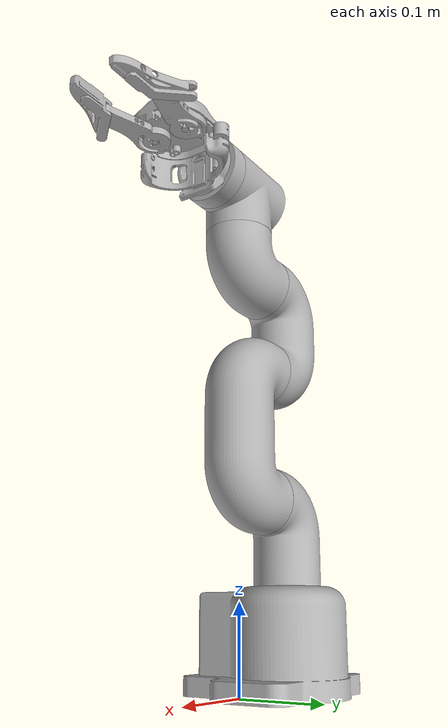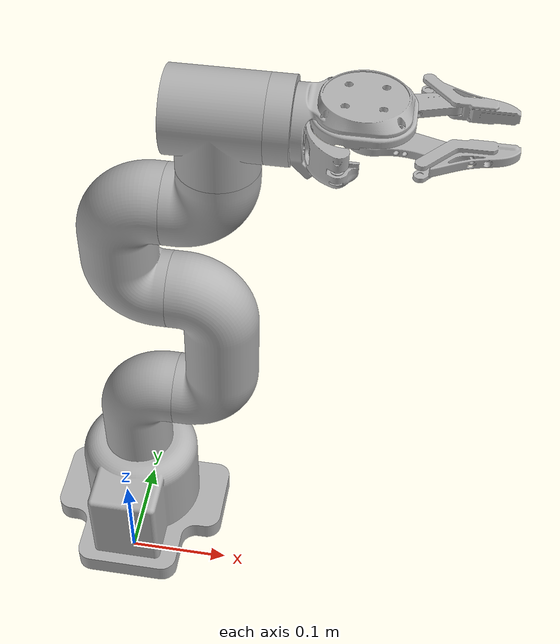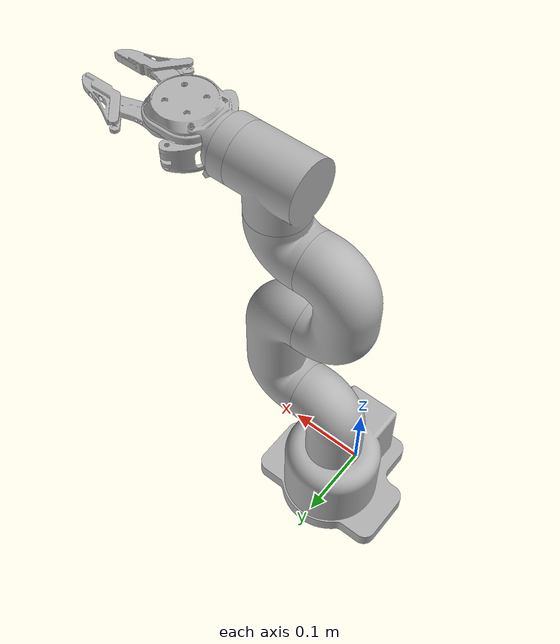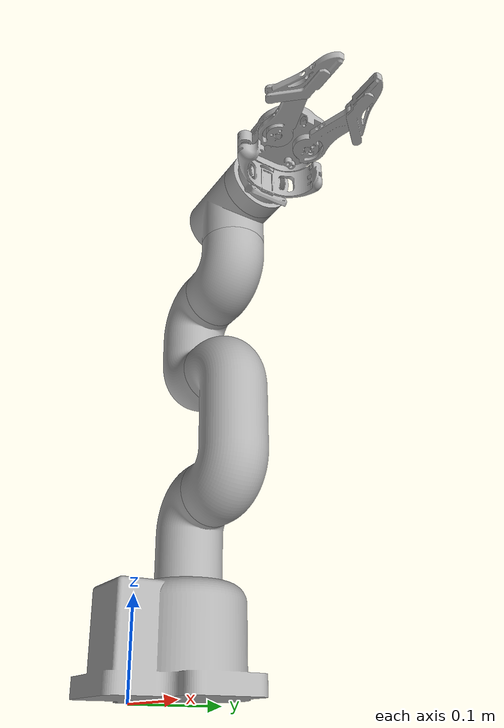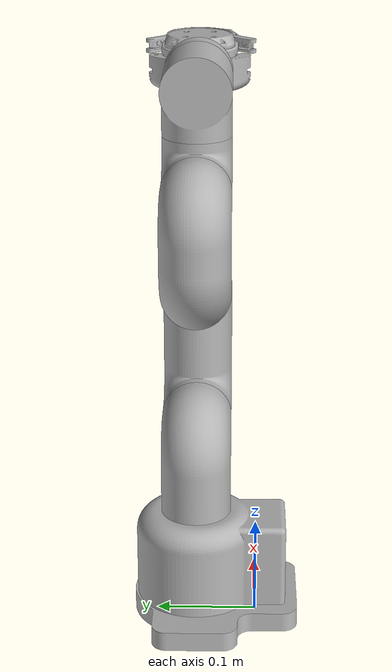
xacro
<?xml version="1.0"?>
<robot xmlns:xacro="http://www.ros.org/wiki/xacro" name="mycobot">
    <xacro:arg name="initial_positions_file" default="initial_positions.yaml" />

    <!-- Import mycobot urdf file -->
    <xacro:include filename="$(find mycobot_description)/urdf/mycobot.xacro" />

    <!-- Import control_xacro -->
    <xacro:include filename="mycobot.ros2_control.xacro" />

    <xacro:mycobot_ros2_control name="FakeSystem" initial_positions_file="$(arg initial_positions_file)"/>

</robot>

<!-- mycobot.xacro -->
<robot name="mycobot" xmlns:xacro="http://www.ros.org/wiki/xacro">

<xacro:include filename="$(find mycobot_description)/urdf/materials.xacro"/>
<link name="base_link">
  <visual>
    <origin xyz="0 0 0" rpy="0 0 0"/>
    <geometry>
      <mesh filename="file://$(find mycobot_description)/meshes/base_link.stl" scale="0.001 0.001 0.001"/>
    </geometry>
    <material name="silver"/>
  </visual>
  <collision>
    <origin xyz="0 0 0" rpy="0 0 0"/>
    <geometry>
      <mesh filename="file://$(find mycobot_description)/meshes/base_link.stl" scale="0.001 0.001 0.001"/>
    </geometry>
  </collision>
</link>

<link name="link1">
  <visual>
    <origin xyz="0.0 -0.060072 -0.114761" rpy="0 0 0"/>
    <geometry>
      <mesh filename="file://$(find mycobot_description)/meshes/link1.stl" scale="0.001 0.001 0.001"/>
    </geometry>
    <material name="silver"/>
  </visual>
  <collision>
    <origin xyz="0.0 -0.060072 -0.114761" rpy="0 0 0"/>
    <geometry>
      <mesh filename="file://$(find mycobot_description)/meshes/link1.stl" scale="0.001 0.001 0.001"/>
    </geometry>
  </collision>
</link>

<link name="link2">
  <visual>
    <origin xyz="-0.045 -0.060072 -0.199761" rpy="0 0 0"/>
    <geometry>
      <mesh filename="file://$(find mycobot_description)/meshes/link2.stl" scale="0.001 0.001 0.001"/>
    </geometry>
    <material name="silver"/>
  </visual>
  <collision>
    <origin xyz="-0.045 -0.060072 -0.199761" rpy="0 0 0"/>
    <geometry>
      <mesh filename="file://$(find mycobot_description)/meshes/link2.stl" scale="0.001 0.001 0.001"/>
    </geometry>
  </collision>
</link>

<link name="link3">
  <visual>
    <origin xyz="-0.045 -0.060072 -0.335761" rpy="0 0 0"/>
    <geometry>
      <mesh filename="file://$(find mycobot_description)/meshes/link3.stl" scale="0.001 0.001 0.001"/>
    </geometry>
    <material name="silver"/>
  </visual>
  <collision>
    <origin xyz="-0.045 -0.060072 -0.335761" rpy="0 0 0"/>
    <geometry>
      <mesh filename="file://$(find mycobot_description)/meshes/link3.stl" scale="0.001 0.001 0.001"/>
    </geometry>
  </collision>
</link>

<link name="link4">
  <visual>
    <origin xyz="-0.045 -0.060072 -0.434761" rpy="0 0 0"/>
    <geometry>
      <mesh filename="file://$(find mycobot_description)/meshes/link4.stl" scale="0.001 0.001 0.001"/>
    </geometry>
    <material name="silver"/>
  </visual>
  <collision>
    <origin xyz="-0.045 -0.060072 -0.434761" rpy="0 0 0"/>
    <geometry>
      <mesh filename="file://$(find mycobot_description)/meshes/link4.stl" scale="0.001 0.001 0.001"/>
    </geometry>
  </collision>
</link>

<link name="link5">
  <visual>
    <origin xyz="-0.09 -0.060072 -0.479761" rpy="0 0 0"/>
    <geometry>
      <mesh filename="file://$(find mycobot_description)/meshes/link5.stl" scale="0.001 0.001 0.001"/>
    </geometry>
    <material name="silver"/>
  </visual>
  <collision>
    <origin xyz="-0.09 -0.060072 -0.479761" rpy="0 0 0"/>
    <geometry>
      <mesh filename="file://$(find mycobot_description)/meshes/link5.stl" scale="0.001 0.001 0.001"/>
    </geometry>
  </collision>
</link>

<link name="link6">
  <visual>
    <origin xyz="-0.13 -0.060072 -0.529761" rpy="0 0 0"/>
    <geometry>
      <mesh filename="file://$(find mycobot_description)/meshes/link6.stl" scale="0.001 0.001 0.001"/>
    </geometry>
    <material name="silver"/>
  </visual>
  <collision>
    <origin xyz="-0.13 -0.060072 -0.529761" rpy="0 0 0"/>
    <geometry>
      <mesh filename="file://$(find mycobot_description)/meshes/link6.stl" scale="0.001 0.001 0.001"/>
    </geometry>
  </collision>
</link>

<link name="gripper_left1">
  <visual>
    <origin xyz="-0.261438 -0.008607 -0.536903" rpy="0 0 0"/>
    <geometry>
      <mesh filename="file://$(find mycobot_description)/meshes/gripper_left1.stl" scale="0.001 0.001 0.001"/>
    </geometry>
    <material name="silver"/>
  </visual>
  <collision>
    <origin xyz="-0.261438 -0.008607 -0.536903" rpy="0 0 0"/>
    <geometry>
      <mesh filename="file://$(find mycobot_description)/meshes/gripper_left1.stl" scale="0.001 0.001 0.001"/>
    </geometry>
  </collision>
</link>

<link name="gripper_right1">
  <visual>
    <origin xyz="-0.261438 -0.111297 -0.533501" rpy="0 0 0"/>
    <geometry>
      <mesh filename="file://$(find mycobot_description)/meshes/gripper_right1.stl" scale="0.001 0.001 0.001"/>
    </geometry>
    <material name="silver"/>
  </visual>
  <collision>
    <origin xyz="-0.261438 -0.111297 -0.533501" rpy="0 0 0"/>
    <geometry>
      <mesh filename="file://$(find mycobot_description)/meshes/gripper_right1.stl" scale="0.001 0.001 0.001"/>
    </geometry>
  </collision>
</link>

<link name="gripper_left3">
  <visual>
    <origin xyz="-0.21039 -0.041612 -0.533403" rpy="0 0 0"/>
    <geometry>
      <mesh filename="file://$(find mycobot_description)/meshes/gripper_left3.stl" scale="0.001 0.001 0.001"/>
    </geometry>
    <material name="silver"/>
  </visual>
  <collision>
    <origin xyz="-0.21039 -0.041612 -0.533403" rpy="0 0 0"/>
    <geometry>
      <mesh filename="file://$(find mycobot_description)/meshes/gripper_left3.stl" scale="0.001 0.001 0.001"/>
    </geometry>
  </collision>
</link>

<link name="gripper_right3">
  <visual>
    <origin xyz="-0.21039 -0.078292 -0.533403" rpy="0 0 0"/>
    <geometry>
      <mesh filename="file://$(find mycobot_description)/meshes/gripper_right3.stl" scale="0.001 0.001 0.001"/>
    </geometry>
    <material name="silver"/>
  </visual>
  <collision>
    <origin xyz="-0.21039 -0.078292 -0.533403" rpy="0 0 0"/>
    <geometry>
      <mesh filename="file://$(find mycobot_description)/meshes/gripper_right3.stl" scale="0.001 0.001 0.001"/>
    </geometry>
  </collision>
</link>

<link name="gripper_base">
  <visual>
    <origin xyz="-0.15 -0.060072 -0.529761" rpy="0 0 0"/>
    <geometry>
      <mesh filename="file://$(find mycobot_description)/meshes/gripper_base.stl" scale="0.001 0.001 0.001"/>
    </geometry>
    <material name="silver"/>
  </visual>
  <collision>
    <origin xyz="-0.15 -0.060072 -0.529761" rpy="0 0 0"/>
    <geometry>
      <mesh filename="file://$(find mycobot_description)/meshes/gripper_base.stl" scale="0.001 0.001 0.001"/>
    </geometry>
  </collision>
</link>

<!-- joint -->
<joint name="joint2_to_joint1" type="revolute">
  <origin xyz="0.0 0.060072 0.114761" rpy="0 0 0"/>
  <parent link="base_link"/>
  <child link="link1"/>
  <axis xyz="-0.0 0.0 1.0"/>
  <limit upper="2.87" lower="-2.87" effort="100" velocity="100"/>
</joint>

<joint name="joint3_to_joint2" type="revolute">
  <origin xyz="0.045 0.0 0.085" rpy="0 0 0"/>
  <parent link="link1"/>
  <child link="link2"/>
  <axis xyz="1.0 -0.0 0.0"/>
  <limit upper="2.87" lower="-2.87" effort="100" velocity="100"/>
</joint>

<joint name="joint4_to_joint3" type="revolute">
  <origin xyz="0.0 0.0 0.136" rpy="0 0 0"/>
  <parent link="link2"/>
  <child link="link3"/>
  <axis xyz="-1.0 0.0 -0.0"/>
  <limit upper="2.87" lower="-2.87" effort="100" velocity="100"/>
</joint>

<joint name="joint5_to_joint4" type="revolute">
  <origin xyz="0.0 0.0 0.099" rpy="0 0 0"/>
  <parent link="link3"/>
  <child link="link4"/>
  <axis xyz="1.0 0.0 0.0"/>
  <limit upper="2.87" lower="-2.87" effort="100" velocity="100"/>
</joint>

<joint name="joint6_to_joint5" type="revolute">
  <origin xyz="0.045 0.0 0.045" rpy="0 0 0"/>
  <parent link="link4"/>
  <child link="link5"/>
  <axis xyz="0.0 0.0 1.0"/>
  <limit upper="2.87" lower="-2.87" effort="100" velocity="100"/>
</joint>

<joint name="joint6output_to_joint6" type="revolute">
  <origin xyz="0.04 0.0 0.05" rpy="0 0 0"/>
  <parent link="link5"/>
  <child link="link6"/>
  <axis xyz="1.0 -0.0 0.0"/>
  <limit upper="2.87" lower="-2.87" effort="100" velocity="100"/>
</joint>

<!-- gripper joint -->

<joint name="joint6output_to_gripper_base" type="fixed">
  <origin xyz="0.02 0.0 0.0" rpy="0 0 0"/>
  <parent link="link6"/>
  <child link="gripper_base"/>
</joint>

<joint name="gripper_controller" type="revolute">
  <origin xyz="0.06039 0.01822 0.003642" rpy="0 0 -0.42"/>
  <parent link="gripper_base"/>
  <child link="gripper_right3"/>
  <axis xyz="0.0 -0.0 -1.0"/>
  <limit upper="0.3" lower="-0.7" effort="100" velocity="100"/>
</joint>

<joint name="gripper_right3_to_gripper_right1" type="revolute">
  <origin xyz="0.051048 0.033005 9.8e-05" rpy="0 0 0.42"/>
  <parent link="gripper_right3"/>
  <child link="gripper_right1"/>
  <axis xyz="-0.0 -0.0 -1.0"/>
  <limit upper="0.0" lower="-0.698132" effort="100" velocity="100"/>
  <mimic joint="gripper_controller" multiplier="-1" offset="0"/>
</joint>

<joint name="gripper_left3_to_gripper_left1" type="revolute">
  <origin xyz="0.051048 -0.033005 0.0035" rpy="0 0 -0.42"/>
  <parent link="gripper_left3"/>
  <child link="gripper_left1"/>
  <axis xyz="0.0 0.0 1.0"/>
  <limit upper="0.0" lower="-0.698132" effort="100" velocity="100"/>
  <mimic joint="gripper_controller" multiplier="-1" offset="0"/>
</joint>

<joint name="gripper_base_to_gripper_left3" type="revolute">
  <origin xyz="0.06039 -0.01846 0.003642" rpy="0 0 0.42"/>
  <parent link="gripper_base"/>
  <child link="gripper_left3"/>
  <axis xyz="0.0 -0.0 -1.0"/>
  <limit upper="0.0" lower="-0.698132" effort="100" velocity="100"/>
  <mimic joint="gripper_controller" multiplier="-1" offset="0"/>
</joint>

</robot>

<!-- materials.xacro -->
<robot name="mycobot" xmlns:xacro="http://www.ros.org/wiki/xacro" >

<material name="silver">
  <color rgba="0.700 0.700 0.700 1.000"/>
</material>

</robot>
